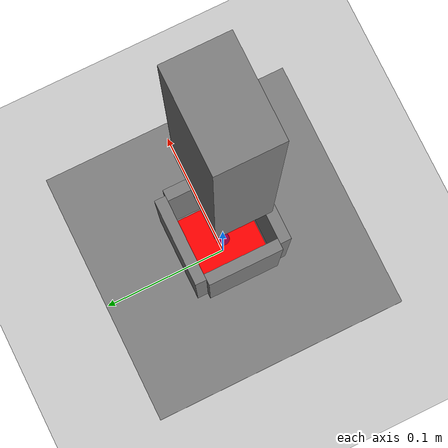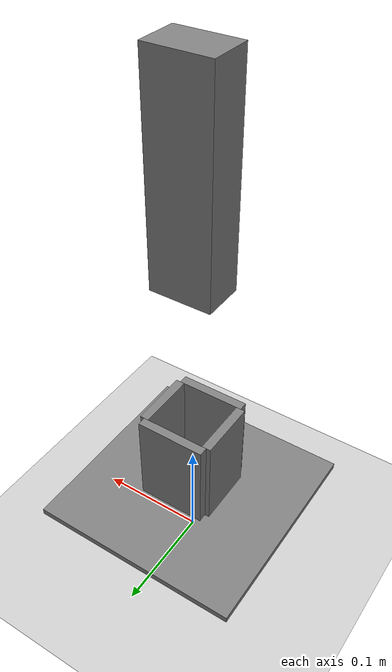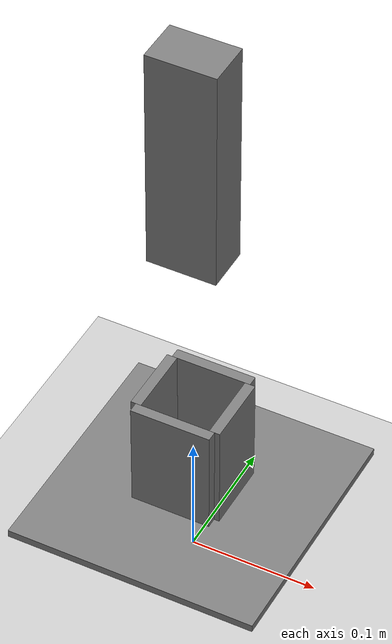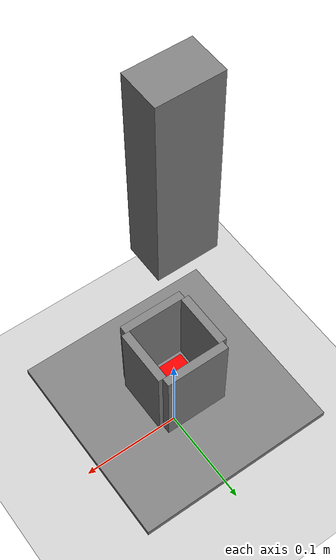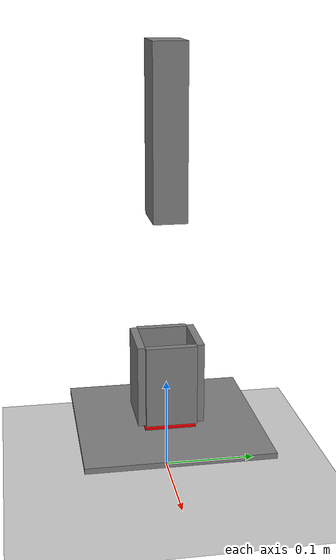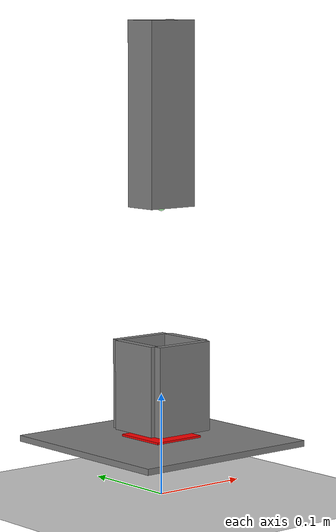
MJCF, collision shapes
<mujoco model="geometry_smoke_rectangular_12mm">
  <!-- family=rectangular_12mm; socket=rectangular_12mm; scale=4.5; collision_from_measured_mesh_not_copied_8mm -->
  <compiler angle="radian" meshdir="/" autolimits="true"/>
  <option timestep="0.002" gravity="0 0 -9.81"/>
  <visual>
    <global offwidth="640" offheight="480"/>
  </visual>
  <asset>
    <mesh name="peg_mesh" file="/home/wangrenpeng/dexjoco/dexjoco/dexjoco/sim/envs/xmls/industreal/mesh/industreal_pegs/industreal_rectangular_peg_12mm.obj" scale="4.5 4.5 4.5"/>
    <mesh name="socket_mesh" file="/home/wangrenpeng/dexjoco/dexjoco/dexjoco/sim/envs/xmls/industreal/mesh/industreal_pegs/industreal_tray_insert_rectangular_peg_12mm.obj" scale="4.5 4.5 4.5"/>
    <material name="peg_mat" rgba="0.86 0.73 0.39 1"/>
    <material name="socket_mat" rgba="0.22 0.28 0.34 1"/>
  </asset>
  <worldbody>
    <light pos="0 0 2" dir="0 0 -1"/>
    <geom name="floor" type="plane" size="1 1 0.05" rgba="0.8 0.8 0.8 1" contype="1" conaffinity="1"/>

    <body name="socket_body" pos="0 0 0.05">
      <freejoint name="socket_joint"/>
      <geom name="socket_visual" type="mesh" mesh="socket_mesh" material="socket_mat"
            contype="0" conaffinity="0" density="0" group="1"/>
      <geom name="socket_base" type="box" pos="0 0 0.003000"
            size="0.099000 0.099000 0.003000"
            friction="0.8 0.02 0.002" density="100" mass="0.05" group="3"/>
      <geom name="wall_pos_y" type="box" pos="0 0.031510 0.059100" size="0.031510 0.004110 0.044100" friction="0.8 0.02 0.002" density="100" group="3"/>
      <geom name="wall_neg_y" type="box" pos="0 -0.031510 0.059100" size="0.031510 0.004110 0.044100" friction="0.8 0.02 0.002" density="100" group="3"/>
      <geom name="wall_pos_x" type="box" pos="0.031510 0 0.059100" size="0.004110 0.027400 0.044100" friction="0.8 0.02 0.002" density="100" group="3"/>
      <geom name="wall_neg_x" type="box" pos="-0.031510 0 0.059100" size="0.004110 0.027400 0.044100" friction="0.8 0.02 0.002" density="100" group="3"/>
      <geom name="insert_bottom_contact" type="box" pos="0 0 0.008000"
            size="0.027400 0.027400 0.001000"
            friction="0.8 0.02 0.002" density="100" mass="0.01" rgba="1 0 0 0.3" group="3"/>
      <site name="socket_site" pos="0 0 0.015000" size="0.005" rgba="0 0 1 0.4"/>
    </body>

    <body name="peg_body" pos="0 0 0.25">
      <freejoint name="peg_joint"/>
      <geom name="peg_visual" type="mesh" mesh="peg_mesh" material="peg_mat"
            contype="0" conaffinity="0" density="0" group="1"/>
      <geom name="peg_collision" type="box" pos="0 0 0.123750" size="0.026903 0.017798 0.090000" friction="0.7 0.2 0.005" density="100" group="3"/>
      <site name="peg_tip_site" pos="0 0 0.033750" size="0.004" rgba="0 1 0 0.4"/>
      <site name="peg_grasp_site" pos="0 0 0.146250" size="0.005" rgba="1 0 0 0.4"/>
    </body>
  </worldbody>
</mujoco>
